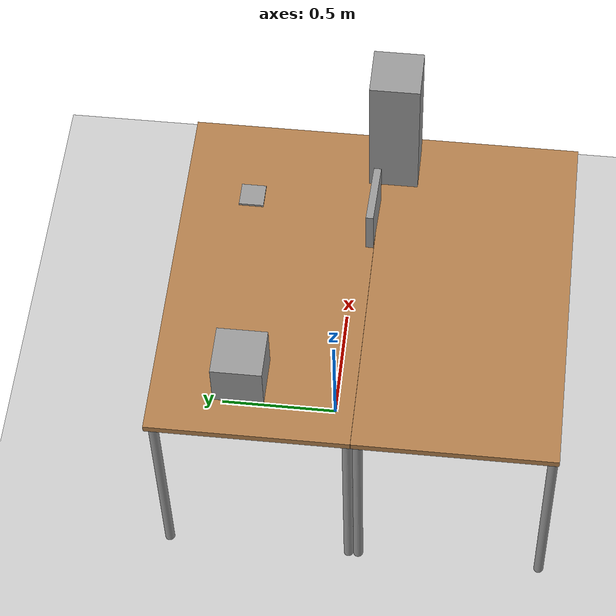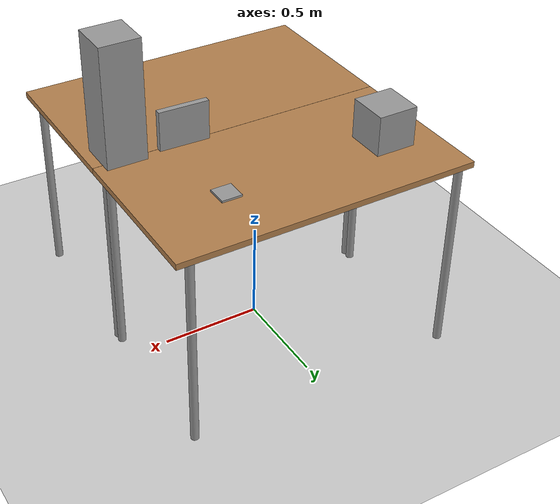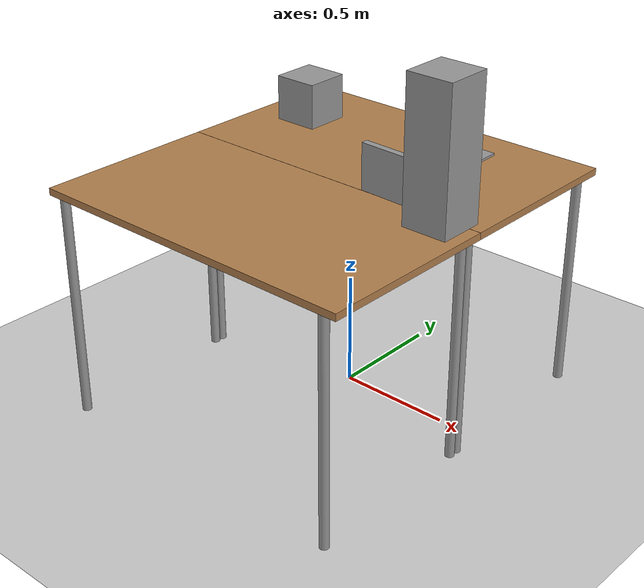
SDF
<sdf version="1.7">
 <world name="default">
  <light name="sun" type="directional">
   <pose>0 0 10 0 -0 0</pose>
   <diffuse>0.8 0.8 0.8 1</diffuse>
   <specular>0.2 0.2 0.2 1</specular>
   <attenuation>
    <range>1000</range>
    <constant>0.9</constant>
    <linear>0.01</linear>
    <quadratic>0.001</quadratic>
   </attenuation>
   <direction>-0.5 0.1 -0.9</direction>
   <spot><inner_angle>0</inner_angle><outer_angle>0</outer_angle><falloff>0</falloff></spot>
  </light>
  <model name="ground_plane">
   <static>1</static>
   <link name="link">
    <collision name="collision">
     <geometry><plane><normal>0 0 1</normal><size>100 100</size></plane></geometry>
     <surface><friction><ode><mu>100</mu><mu2>50</mu2></ode></friction></surface>
    </collision>
    <visual name="visual">
     <cast_shadows>0</cast_shadows>
     <geometry><plane><normal>0 0 1</normal><size>100 100</size></plane></geometry>
     <material>
      <script><uri>file://media/materials/scripts/gazebo.material</uri><name>Gazebo/Grey</name></script>
     </material>
    </visual>
   </link>
  </model>
  <gravity>0 0 -9.8</gravity>
  <magnetic_field>6e-06 2.3e-05 -4.2e-05</magnetic_field>
  <atmosphere type="adiabatic"/>
  <physics type="ode">
   <max_step_size>0.001</max_step_size>
   <real_time_factor>1</real_time_factor>
   <real_time_update_rate>1000</real_time_update_rate>
  </physics>
  <scene><ambient>0.4 0.4 0.4 1</ambient><background>0.7 0.7 0.7 1</background><shadows>1</shadows></scene>
  <audio><device>default</device></audio>
  <spherical_coordinates>
   <surface_model>EARTH_WGS84</surface_model>
   <latitude_deg>0</latitude_deg>
   <longitude_deg>0</longitude_deg>
   <elevation>0</elevation>
   <heading_deg>0</heading_deg>
  </spherical_coordinates>
  <light name="user_directional_light_1" type="directional">
   <pose>-0.942039 -8.394 1 0 -0 0</pose>
   <diffuse>0.5 0.5 0.5 1</diffuse>
   <specular>0.1 0.1 0.1 1</specular>
   <direction>0.1 0.1 -0.9</direction>
   <attenuation>
    <range>20</range>
    <constant>0.5</constant>
    <linear>0.01</linear>
    <quadratic>0.001</quadratic>
   </attenuation>
   <spot><inner_angle>0</inner_angle><outer_angle>0</outer_angle><falloff>0</falloff></spot>
  </light>
  <light name="user_point_light_0" type="point">
   <pose>-0.034204 -0.016897 1 0 -0 0</pose>
   <diffuse>0.5 0.5 0.5 1</diffuse>
   <specular>0.1 0.1 0.1 1</specular>
   <attenuation>
    <range>20</range>
    <constant>0.5</constant>
    <linear>0.01</linear>
    <quadratic>0.001</quadratic>
   </attenuation>
   <cast_shadows>0</cast_shadows>
   <direction>0 0 -1</direction>
   <spot><inner_angle>0</inner_angle><outer_angle>0</outer_angle><falloff>0</falloff></spot>
  </light>
  <model name="table">
   <static>1</static>
   <link name="link">
    <collision name="surface">
     <pose>0 0 1 0 -0 0</pose>
     <geometry><box><size>1.5 0.8 0.03</size></box></geometry>
     <surface><friction><ode><mu>0.6</mu><mu2>0.6</mu2></ode></friction></surface>
    </collision>
    <visual name="visual1">
     <pose>0 0 1 0 -0 0</pose>
     <geometry><box><size>1.5 0.8 0.03</size></box></geometry>
     <material>
      <script><uri>file://media/materials/scripts/gazebo.material</uri><name>Gazebo/Wood</name></script>
     </material>
    </visual>
    <collision name="front_left_leg">
     <pose>0.68 0.38 0.5 0 -0 0</pose>
     <geometry><cylinder><radius>0.02</radius><length>1</length></cylinder></geometry>
    </collision>
    <visual name="front_left_leg">
     <pose>0.68 0.38 0.5 0 -0 0</pose>
     <geometry><cylinder><radius>0.02</radius><length>1</length></cylinder></geometry>
     <material>
      <script><uri>file://media/materials/scripts/gazebo.material</uri><name>Gazebo/Grey</name></script>
     </material>
    </visual>
    <collision name="front_right_leg">
     <pose>0.68 -0.38 0.5 0 -0 0</pose>
     <geometry><cylinder><radius>0.02</radius><length>1</length></cylinder></geometry>
    </collision>
    <visual name="front_right_leg">
     <pose>0.68 -0.38 0.5 0 -0 0</pose>
     <geometry><cylinder><radius>0.02</radius><length>1</length></cylinder></geometry>
     <material>
      <script><uri>file://media/materials/scripts/gazebo.material</uri><name>Gazebo/Grey</name></script>
     </material>
    </visual>
    <collision name="back_right_leg">
     <pose>-0.68 -0.38 0.5 0 -0 0</pose>
     <geometry><cylinder><radius>0.02</radius><length>1</length></cylinder></geometry>
    </collision>
    <visual name="back_right_leg">
     <pose>-0.68 -0.38 0.5 0 -0 0</pose>
     <geometry><cylinder><radius>0.02</radius><length>1</length></cylinder></geometry>
     <material>
      <script><uri>file://media/materials/scripts/gazebo.material</uri><name>Gazebo/Grey</name></script>
     </material>
    </visual>
    <collision name="back_left_leg">
     <pose>-0.68 0.38 0.5 0 -0 0</pose>
     <geometry><cylinder><radius>0.02</radius><length>1</length></cylinder></geometry>
    </collision>
    <visual name="back_left_leg">
     <pose>-0.68 0.38 0.5 0 -0 0</pose>
     <geometry><cylinder><radius>0.02</radius><length>1</length></cylinder></geometry>
     <material>
      <script><uri>file://media/materials/scripts/gazebo.material</uri><name>Gazebo/Grey</name></script>
     </material>
    </visual>
   </link>
   <pose>0 0.25 0 0 -0 0</pose>
  </model>
  <model name="obstacle_big">
   <link name="link">
    <inertial>
     <mass>1</mass>
     <inertia>
      <ixx>0.166667</ixx>
      <ixy>0</ixy>
      <ixz>0</ixz>
      <iyy>0.166667</iyy>
      <iyz>0</iyz>
      <izz>0.166667</izz>
     </inertia>
    </inertial>
    <visual name="visual">
     <geometry><box><size>0.2 0.2 0.6</size></box></geometry>
     <material>
      <script><name>Gazebo/Grey</name><uri>file://media/materials/scripts/gazebo.material</uri></script>
      <shader type="pixel"><normal_map>__default__</normal_map></shader>
      <ambient>0.3 0.3 0.3 1</ambient>
      <diffuse>0.7 0.7 0.7 1</diffuse>
      <specular>0.01 0.01 0.01 1</specular>
      <emissive>0 0 0 1</emissive>
     </material>
    </visual>
    <collision name="collision">
     <geometry><box><size>0.2 0.2 0.6</size></box></geometry>
     <surface>
      <friction>
       <ode><mu>1</mu><mu2>1</mu2><fdir1>0 0 0</fdir1><slip1>0</slip1><slip2>0</slip2></ode>
       <torsional>
        <coefficient>1</coefficient>
        <patch_radius>0</patch_radius>
        <surface_radius>0</surface_radius>
        <use_patch_radius>1</use_patch_radius>
        <ode><slip>0</slip></ode>
       </torsional>
      </friction>
      <bounce><restitution_coefficient>0</restitution_coefficient><threshold>1e+06</threshold></bounce>
      <contact>
       <collide_without_contact>0</collide_without_contact>
       <collide_without_contact_bitmask>1</collide_without_contact_bitmask>
       <collide_bitmask>1</collide_bitmask>
       <ode>
        <soft_cfm>0</soft_cfm>
        <soft_erp>0.2</soft_erp>
        <kp>1e+13</kp>
        <kd>1</kd>
        <max_vel>0.01</max_vel>
        <min_depth>0</min_depth>
       </ode>
       <bullet>
        <split_impulse>1</split_impulse>
        <split_impulse_penetration_threshold>-0.01</split_impulse_penetration_threshold>
        <soft_cfm>0</soft_cfm>
        <soft_erp>0.2</soft_erp>
        <kp>1e+13</kp>
        <kd>1</kd>
       </bullet>
      </contact>
     </surface>
    </collision>
   </link>
   <static>0</static>
   <pose>0.6 -0.199993 1.315 0 -0 1.8e-05</pose>
  </model>
  <model name="obstacle_small">
   <link name="link">
    <inertial>
     <mass>1</mass>
     <inertia>
      <ixx>0.166667</ixx>
      <ixy>0</ixy>
      <ixz>0</ixz>
      <iyy>0.166667</iyy>
      <iyz>0</iyz>
      <izz>0.166667</izz>
     </inertia>
    </inertial>
    <visual name="visual">
     <geometry><box><size>0.2 0.2 0.2</size></box></geometry>
     <material>
      <script><name>Gazebo/Grey</name><uri>file://media/materials/scripts/gazebo.material</uri></script>
      <shader type="pixel"><normal_map>__default__</normal_map></shader>
      <ambient>0.3 0.3 0.3 1</ambient>
      <diffuse>0.7 0.7 0.7 1</diffuse>
      <specular>0.01 0.01 0.01 1</specular>
      <emissive>0 0 0 1</emissive>
     </material>
    </visual>
    <collision name="collision">
     <geometry><box><size>0.2 0.2 0.2</size></box></geometry>
     <surface>
      <friction>
       <ode><mu>1</mu><mu2>1</mu2><fdir1>0 0 0</fdir1><slip1>0</slip1><slip2>0</slip2></ode>
       <torsional>
        <coefficient>1</coefficient>
        <patch_radius>0</patch_radius>
        <surface_radius>0</surface_radius>
        <use_patch_radius>1</use_patch_radius>
        <ode><slip>0</slip></ode>
       </torsional>
      </friction>
      <bounce><restitution_coefficient>0</restitution_coefficient><threshold>1e+06</threshold></bounce>
      <contact>
       <collide_without_contact>0</collide_without_contact>
       <collide_without_contact_bitmask>1</collide_without_contact_bitmask>
       <collide_bitmask>1</collide_bitmask>
       <ode>
        <soft_cfm>0</soft_cfm>
        <soft_erp>0.2</soft_erp>
        <kp>1e+13</kp>
        <kd>1</kd>
        <max_vel>0.01</max_vel>
        <min_depth>0</min_depth>
       </ode>
       <bullet>
        <split_impulse>1</split_impulse>
        <split_impulse_penetration_threshold>-0.01</split_impulse_penetration_threshold>
        <soft_cfm>0</soft_cfm>
        <soft_erp>0.2</soft_erp>
        <kp>1e+13</kp>
        <kd>1</kd>
       </bullet>
      </contact>
     </surface>
    </collision>
   </link>
   <static>0</static>
   <pose>-0.500001 0.3 1.115 -4e-06 -3e-06 1.4e-05</pose>
  </model>
  <model name="table_0">
   <static>1</static>
   <link name="link">
    <collision name="surface">
     <pose>0 0 1 0 -0 0</pose>
     <geometry><box><size>1.5 0.8 0.03</size></box></geometry>
     <surface><friction><ode><mu>0.6</mu><mu2>0.6</mu2></ode></friction></surface>
    </collision>
    <visual name="visual1">
     <pose>0 0 1 0 -0 0</pose>
     <geometry><box><size>1.5 0.8 0.03</size></box></geometry>
     <material>
      <script><uri>file://media/materials/scripts/gazebo.material</uri><name>Gazebo/Wood</name></script>
     </material>
    </visual>
    <collision name="front_left_leg">
     <pose>0.68 0.38 0.5 0 -0 0</pose>
     <geometry><cylinder><radius>0.02</radius><length>1</length></cylinder></geometry>
    </collision>
    <visual name="front_left_leg">
     <pose>0.68 0.38 0.5 0 -0 0</pose>
     <geometry><cylinder><radius>0.02</radius><length>1</length></cylinder></geometry>
     <material>
      <script><uri>file://media/materials/scripts/gazebo.material</uri><name>Gazebo/Grey</name></script>
     </material>
    </visual>
    <collision name="front_right_leg">
     <pose>0.68 -0.38 0.5 0 -0 0</pose>
     <geometry><cylinder><radius>0.02</radius><length>1</length></cylinder></geometry>
    </collision>
    <visual name="front_right_leg">
     <pose>0.68 -0.38 0.5 0 -0 0</pose>
     <geometry><cylinder><radius>0.02</radius><length>1</length></cylinder></geometry>
     <material>
      <script><uri>file://media/materials/scripts/gazebo.material</uri><name>Gazebo/Grey</name></script>
     </material>
    </visual>
    <collision name="back_right_leg">
     <pose>-0.68 -0.38 0.5 0 -0 0</pose>
     <geometry><cylinder><radius>0.02</radius><length>1</length></cylinder></geometry>
    </collision>
    <visual name="back_right_leg">
     <pose>-0.68 -0.38 0.5 0 -0 0</pose>
     <geometry><cylinder><radius>0.02</radius><length>1</length></cylinder></geometry>
     <material>
      <script><uri>file://media/materials/scripts/gazebo.material</uri><name>Gazebo/Grey</name></script>
     </material>
    </visual>
    <collision name="back_left_leg">
     <pose>-0.68 0.38 0.5 0 -0 0</pose>
     <geometry><cylinder><radius>0.02</radius><length>1</length></cylinder></geometry>
    </collision>
    <visual name="back_left_leg">
     <pose>-0.68 0.38 0.5 0 -0 0</pose>
     <geometry><cylinder><radius>0.02</radius><length>1</length></cylinder></geometry>
     <material>
      <script><uri>file://media/materials/scripts/gazebo.material</uri><name>Gazebo/Grey</name></script>
     </material>
    </visual>
   </link>
   <pose>0.000104 -0.550466 0 0 -0 0</pose>
  </model>
  <model name="thin_obstacle">
   <link name="link">
    <inertial>
     <mass>1</mass>
     <inertia>
      <ixx>0.166667</ixx>
      <ixy>0</ixy>
      <ixz>0</ixz>
      <iyy>0.166667</iyy>
      <iyz>0</iyz>
      <izz>0.166667</izz>
     </inertia>
    </inertial>
    <visual name="visual">
     <geometry><box><size>0.03 0.25 0.2</size></box></geometry>
     <material>
      <script><name>Gazebo/Grey</name><uri>file://media/materials/scripts/gazebo.material</uri></script>
      <shader type="pixel"><normal_map>__default__</normal_map></shader>
      <ambient>0.3 0.3 0.3 1</ambient>
      <diffuse>0.7 0.7 0.7 1</diffuse>
      <specular>0.01 0.01 0.01 1</specular>
      <emissive>0 0 0 1</emissive>
     </material>
    </visual>
    <collision name="collision">
     <geometry><box><size>0.03 0.25 0.2</size></box></geometry>
     <surface>
      <friction>
       <ode><mu>1</mu><mu2>1</mu2><fdir1>0 0 0</fdir1><slip1>0</slip1><slip2>0</slip2></ode>
       <torsional>
        <coefficient>1</coefficient>
        <patch_radius>0</patch_radius>
        <surface_radius>0</surface_radius>
        <use_patch_radius>1</use_patch_radius>
        <ode><slip>0</slip></ode>
       </torsional>
      </friction>
      <bounce><restitution_coefficient>0</restitution_coefficient><threshold>1e+06</threshold></bounce>
      <contact>
       <collide_without_contact>0</collide_without_contact>
       <collide_without_contact_bitmask>1</collide_without_contact_bitmask>
       <collide_bitmask>1</collide_bitmask>
       <ode>
        <soft_cfm>0</soft_cfm>
        <soft_erp>0.2</soft_erp>
        <kp>1e+13</kp>
        <kd>1</kd>
        <max_vel>0.01</max_vel>
        <min_depth>0</min_depth>
       </ode>
       <bullet>
        <split_impulse>1</split_impulse>
        <split_impulse_penetration_threshold>-0.01</split_impulse_penetration_threshold>
        <soft_cfm>0</soft_cfm>
        <soft_erp>0.2</soft_erp>
        <kp>1e+13</kp>
        <kd>1</kd>
       </bullet>
      </contact>
     </surface>
    </collision>
   </link>
   <static>0</static>
   <pose>0.301016 -0.137169 1.115 -7e-06 2e-05 1.53596</pose>
  </model>
  <model name="unit_box">
   <link name="link">
    <inertial>
     <mass>0.1</mass>
     <inertia>
      <ixx>0.0166667</ixx>
      <ixy>0</ixy>
      <ixz>0</ixz>
      <iyy>0.0166667</iyy>
      <iyz>0</iyz>
      <izz>0.0166667</izz>
     </inertia>
    </inertial>
    <pose>0.093993 0 0 0 -0 0</pose>
    <visual name="visual">
     <geometry><box><size>0.1 0.1 0.01</size></box></geometry>
     <material>
      <script><name>Gazebo/Grey</name><uri>file://media/materials/scripts/gazebo.material</uri></script>
      <shader type="pixel"><normal_map>__default__</normal_map></shader>
      <ambient>0.3 0.3 0.3 1</ambient>
      <diffuse>0.7 0.7 0.7 1</diffuse>
      <specular>0.01 0.01 0.01 1</specular>
      <emissive>0 0 0 1</emissive>
     </material>
    </visual>
    <collision name="collision">
     <geometry><box><size>0.1 0.1 0.01</size></box></geometry>
     <surface>
      <friction>
       <ode><mu>1</mu><mu2>1</mu2><fdir1>0 0 0</fdir1><slip1>0</slip1><slip2>0</slip2></ode>
       <torsional>
        <coefficient>1</coefficient>
        <patch_radius>0</patch_radius>
        <surface_radius>0</surface_radius>
        <use_patch_radius>1</use_patch_radius>
        <ode><slip>0</slip></ode>
       </torsional>
      </friction>
      <bounce><restitution_coefficient>0</restitution_coefficient><threshold>1e+06</threshold></bounce>
      <contact>
       <collide_without_contact>0</collide_without_contact>
       <collide_without_contact_bitmask>1</collide_without_contact_bitmask>
       <collide_bitmask>1</collide_bitmask>
       <ode>
        <soft_cfm>0</soft_cfm>
        <soft_erp>0.2</soft_erp>
        <kp>1e+13</kp>
        <kd>1</kd>
        <max_vel>0.01</max_vel>
        <min_depth>0</min_depth>
       </ode>
       <bullet>
        <split_impulse>1</split_impulse>
        <split_impulse_penetration_threshold>-0.01</split_impulse_penetration_threshold>
        <soft_cfm>0</soft_cfm>
        <soft_erp>0.2</soft_erp>
        <kp>1e+13</kp>
        <kd>1</kd>
       </bullet>
      </contact>
     </surface>
    </collision>
   </link>
   <static>0</static>
   <pose>0.266433 0.365196 1.055 0 -0 0</pose>
  </model>
 </world>
</sdf>
